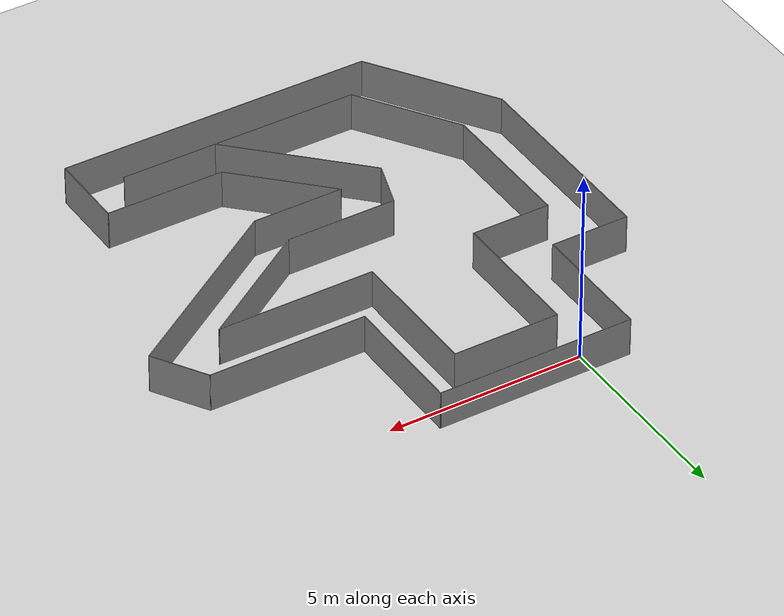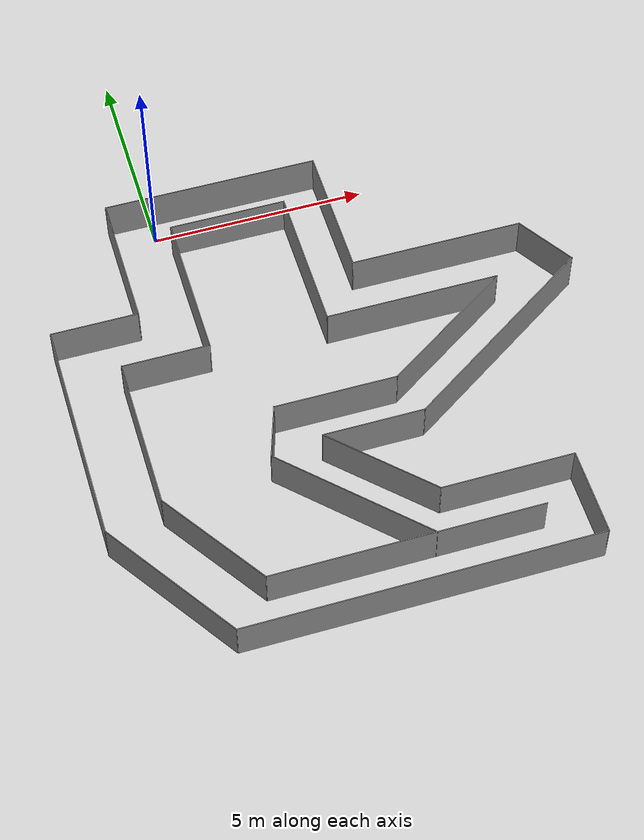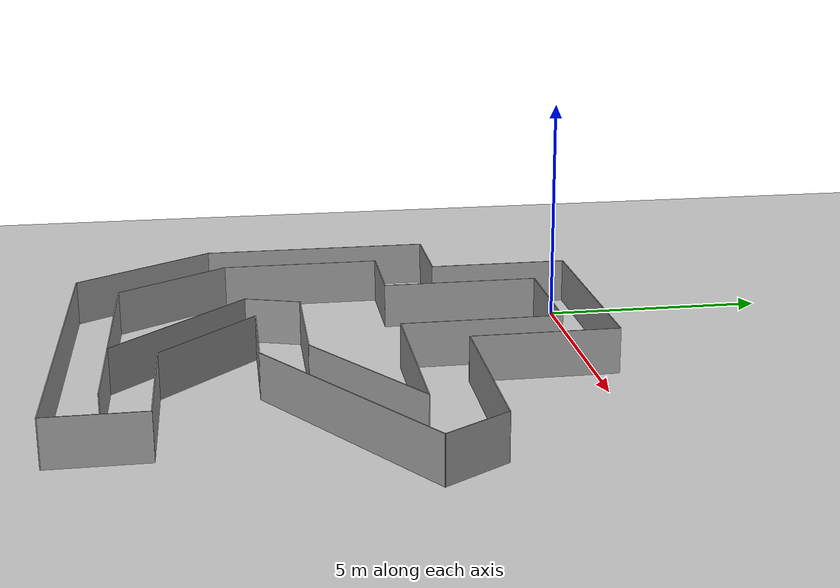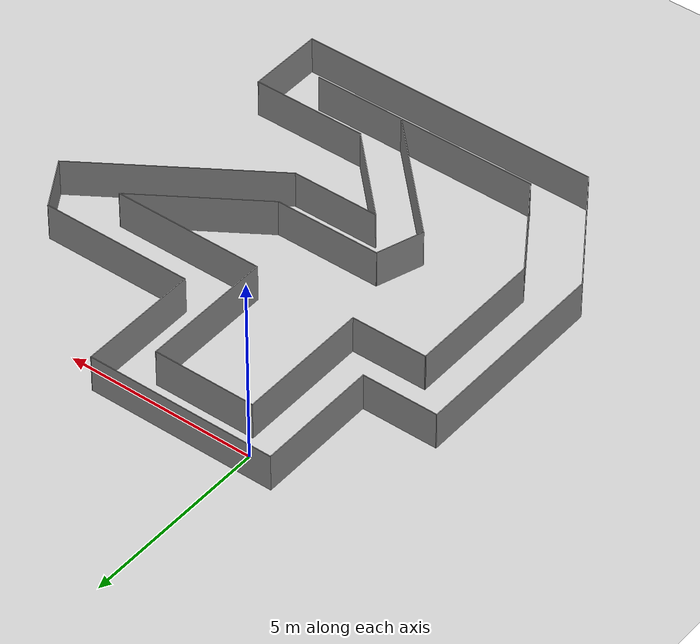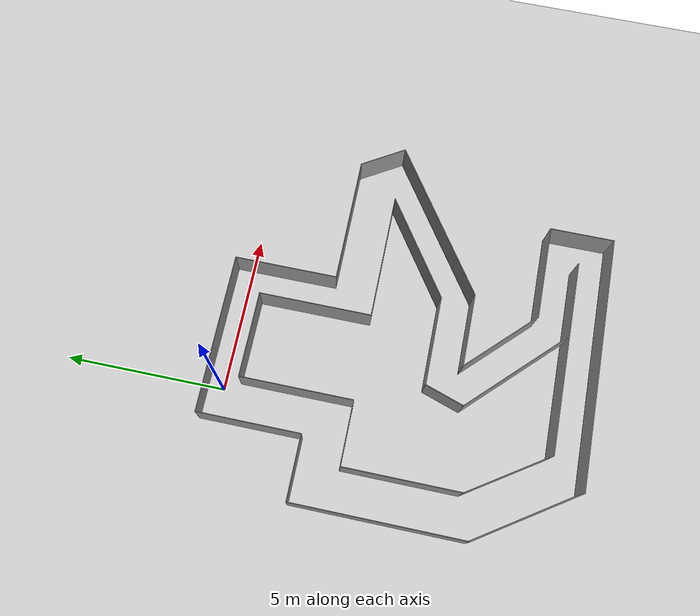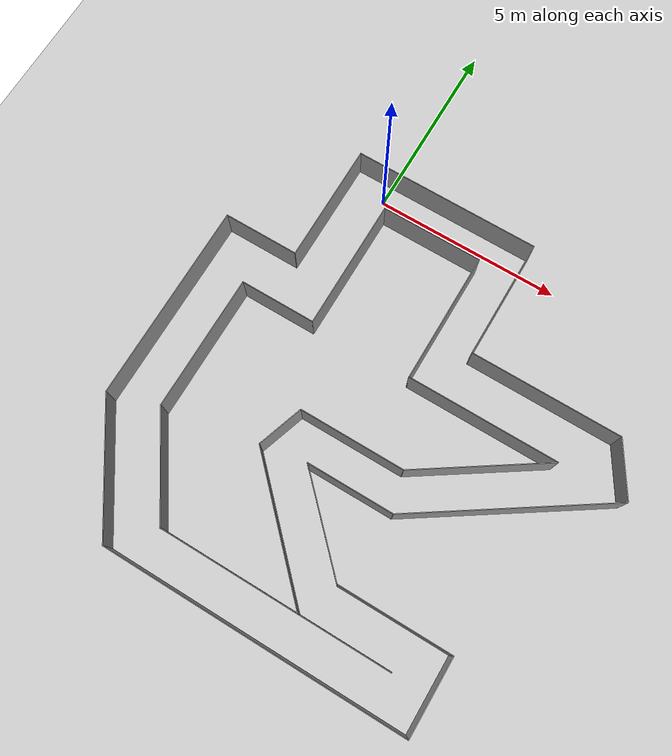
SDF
<sdf version="1.7">
 <world name="default">
  <light name="sun" type="directional">
   <pose>0 0 10 0 -0 0</pose>
   <diffuse>0.8 0.8 0.8 1</diffuse>
   <specular>0.2 0.2 0.2 1</specular>
   <attenuation>
    <range>1000</range>
    <constant>0.9</constant>
    <linear>0.01</linear>
    <quadratic>0.001</quadratic>
   </attenuation>
   <direction>-0.5 0.1 -0.9</direction>
   <spot><inner_angle>0</inner_angle><outer_angle>0</outer_angle><falloff>0</falloff></spot>
  </light>
  <model name="ground_plane">
   <static>1</static>
   <link name="link">
    <collision name="collision">
     <geometry><plane><normal>0 0 1</normal><size>100 100</size></plane></geometry>
     <surface><friction><ode><mu>100</mu><mu2>50</mu2></ode></friction></surface>
    </collision>
    <visual name="visual">
     <cast_shadows>0</cast_shadows>
     <geometry><plane><normal>0 0 1</normal><size>100 100</size></plane></geometry>
     <material>
      <script><uri>file://media/materials/scripts/gazebo.material</uri><name>Gazebo/Grey</name></script>
     </material>
    </visual>
   </link>
  </model>
  <gravity>0 0 -9.8</gravity>
  <magnetic_field>6e-06 2.3e-05 -4.2e-05</magnetic_field>
  <atmosphere type="adiabatic"/>
  <physics type="ode">
   <max_step_size>0.001</max_step_size>
   <real_time_factor>1</real_time_factor>
   <real_time_update_rate>1000</real_time_update_rate>
  </physics>
  <scene><ambient>0.4 0.4 0.4 1</ambient><background>0.7 0.7 0.7 1</background><shadows>1</shadows></scene>
  <audio><device>default</device></audio>
  <spherical_coordinates>
   <surface_model>EARTH_WGS84</surface_model>
   <latitude_deg>0</latitude_deg>
   <longitude_deg>0</longitude_deg>
   <elevation>0</elevation>
   <heading_deg>0</heading_deg>
  </spherical_coordinates>
  <model name="cbf_maze">
   <pose>2.902 -5.25193 0 0 -0 0</pose>
   <link name="Wall_0">
    <collision name="Wall_0_Collision">
     <geometry><box><size>5.02 0.02 1</size></box></geometry>
     <pose>0 0 0.5 0 -0 0</pose>
    </collision>
    <visual name="Wall_0_Visual">
     <pose>0 0 0.5 0 -0 0</pose>
     <geometry><box><size>5.02 0.02 1</size></box></geometry>
     <material>
      <script><uri>file://media/materials/scripts/gazebo.material</uri><name>Gazebo/Grey</name></script>
      <ambient>1 1 1 1</ambient>
     </material>
     <meta><layer>0</layer></meta>
    </visual>
    <pose>-1.402 5.75193 0 0 -0 0</pose>
   </link>
   <link name="Wall_10">
    <collision name="Wall_10_Collision">
     <geometry><box><size>4.02 0.02 1</size></box></geometry>
     <pose>0 0 0.5 0 -0 0</pose>
    </collision>
    <visual name="Wall_10_Visual">
     <pose>0 0 0.5 0 -0 0</pose>
     <geometry><box><size>4.02 0.02 1</size></box></geometry>
     <material>
      <script><uri>file://media/materials/scripts/gazebo.material</uri><name>Gazebo/Grey</name></script>
      <ambient>1 1 1 1</ambient>
     </material>
     <meta><layer>0</layer></meta>
    </visual>
    <pose>2.098 1.25193 0 0 -0 0</pose>
   </link>
   <link name="Wall_12">
    <collision name="Wall_12_Collision">
     <geometry><box><size>5.42916 0.02 1</size></box></geometry>
     <pose>0 0 0.5 0 -0 0</pose>
    </collision>
    <visual name="Wall_12_Visual">
     <pose>0 0 0.5 0 -0 0</pose>
     <geometry><box><size>5.42916 0.02 1</size></box></geometry>
     <material>
      <script><uri>file://media/materials/scripts/gazebo.material</uri><name>Gazebo/Grey</name></script>
      <ambient>1 1 1 1</ambient>
     </material>
     <meta><layer>0</layer></meta>
    </visual>
    <pose>3.6515 -0.248066 0 0 -0 0.5879</pose>
   </link>
   <link name="Wall_14">
    <collision name="Wall_14_Collision">
     <geometry><box><size>1.54853 0.02 1</size></box></geometry>
     <pose>0 0 0.5 0 -0 0</pose>
    </collision>
    <visual name="Wall_14_Visual">
     <pose>0 0 0.5 0 -0 0</pose>
     <geometry><box><size>1.54853 0.02 1</size></box></geometry>
     <material>
      <script><uri>file://media/materials/scripts/gazebo.material</uri><name>Gazebo/Grey</name></script>
      <ambient>1 1 1 1</ambient>
     </material>
     <meta><layer>0</layer></meta>
    </visual>
    <pose>5.5 1.90193 0 0 -0 -1.01691</pose>
   </link>
   <link name="Wall_16">
    <collision name="Wall_16_Collision">
     <geometry><box><size>3.62555 0.02 1</size></box></geometry>
     <pose>0 0 0.5 0 -0 0</pose>
    </collision>
    <visual name="Wall_16_Visual">
     <pose>0 0 0.5 0 -0 0</pose>
     <geometry><box><size>3.62555 0.02 1</size></box></geometry>
     <material>
      <script><uri>file://media/materials/scripts/gazebo.material</uri><name>Gazebo/Grey</name></script>
      <ambient>1 1 1 1</ambient>
     </material>
     <meta><layer>0</layer></meta>
    </visual>
    <pose>2.598 0.251934 0 0 -0 0.588003</pose>
   </link>
   <link name="Wall_18">
    <collision name="Wall_18_Collision">
     <geometry><box><size>2.82 0.02 1</size></box></geometry>
     <pose>0 0 0.5 0 -0 0</pose>
    </collision>
    <visual name="Wall_18_Visual">
     <pose>0 0 0.5 0 -0 0</pose>
     <geometry><box><size>2.82 0.02 1</size></box></geometry>
     <material>
      <script><uri>file://media/materials/scripts/gazebo.material</uri><name>Gazebo/Grey</name></script>
      <ambient>1 1 1 1</ambient>
     </material>
     <meta><layer>0</layer></meta>
    </visual>
    <pose>-0.302 -0.748066 0 0 -0 0</pose>
   </link>
   <link name="Wall_2">
    <collision name="Wall_2_Collision">
     <geometry><box><size>3.22 0.02 1</size></box></geometry>
     <pose>0 0 0.5 0 -0 0</pose>
    </collision>
    <visual name="Wall_2_Visual">
     <pose>0 0 0.5 0 -0 0</pose>
     <geometry><box><size>3.22 0.02 1</size></box></geometry>
     <material>
      <script><uri>file://media/materials/scripts/gazebo.material</uri><name>Gazebo/Grey</name></script>
      <ambient>1 1 1 1</ambient>
     </material>
     <meta><layer>0</layer></meta>
    </visual>
    <pose>1.098 4.15193 0 0 -0 -1.5708</pose>
   </link>
   <link name="Wall_20">
    <collision name="Wall_20_Collision">
     <geometry><box><size>3.96991 0.02 1</size></box></geometry>
     <pose>0 0 0.5 0 -0 0</pose>
    </collision>
    <visual name="Wall_20_Visual">
     <pose>0 0 0.5 0 -0 0</pose>
     <geometry><box><size>3.96991 0.02 1</size></box></geometry>
     <material>
      <script><uri>file://media/materials/scripts/gazebo.material</uri><name>Gazebo/Grey</name></script>
      <ambient>1 1 1 1</ambient>
     </material>
     <meta><layer>0</layer></meta>
    </visual>
    <pose>-0.709 -3.34807 0 0 -0 -0.787904</pose>
   </link>
   <link name="Wall_22">
    <collision name="Wall_22_Collision">
     <geometry><box><size>1.28491 0.02 1</size></box></geometry>
     <pose>0 0 0.5 0 -0 0</pose>
    </collision>
    <visual name="Wall_22_Visual">
     <pose>0 0 0.5 0 -0 0</pose>
     <geometry><box><size>1.28491 0.02 1</size></box></geometry>
     <material>
      <script><uri>file://media/materials/scripts/gazebo.material</uri><name>Gazebo/Grey</name></script>
      <ambient>1 1 1 1</ambient>
     </material>
     <meta><layer>0</layer></meta>
    </visual>
    <pose>-1.902 -1.34807 0 0 -0 -1.89255</pose>
   </link>
   <link name="Wall_24">
    <collision name="Wall_24_Collision">
     <geometry><box><size>8.02 0.02 1</size></box></geometry>
     <pose>0 0 0.5 0 -0 0</pose>
    </collision>
    <visual name="Wall_24_Visual">
     <pose>0 0 0.5 0 -0 0</pose>
     <geometry><box><size>8.02 0.02 1</size></box></geometry>
     <material>
      <script><uri>file://media/materials/scripts/gazebo.material</uri><name>Gazebo/Grey</name></script>
      <ambient>1 1 1 1</ambient>
     </material>
     <meta><layer>0</layer></meta>
    </visual>
    <pose>0.098 -5.74807 0 0 -0 0</pose>
   </link>
   <link name="Wall_26">
    <collision name="Wall_26_Collision">
     <geometry><box><size>2.323 0.02 1</size></box></geometry>
     <pose>0 0 0.5 0 -0 0</pose>
    </collision>
    <visual name="Wall_26_Visual">
     <pose>0 0 0.5 0 -0 0</pose>
     <geometry><box><size>2.323 0.02 1</size></box></geometry>
     <material>
      <script><uri>file://media/materials/scripts/gazebo.material</uri><name>Gazebo/Grey</name></script>
      <ambient>1 1 1 1</ambient>
     </material>
     <meta><layer>0</layer></meta>
    </visual>
    <pose>0.2495 -1.74807 0 0 -0 0</pose>
   </link>
   <link name="Wall_28">
    <collision name="Wall_28_Collision">
     <geometry><box><size>2.84843 0.02 1</size></box></geometry>
     <pose>0 0 0.5 0 -0 0</pose>
    </collision>
    <visual name="Wall_28_Visual">
     <pose>0 0 0.5 0 -0 0</pose>
     <geometry><box><size>2.84843 0.02 1</size></box></geometry>
     <material>
      <script><uri>file://media/materials/scripts/gazebo.material</uri><name>Gazebo/Grey</name></script>
      <ambient>1 1 1 1</ambient>
     </material>
     <meta><layer>0</layer></meta>
    </visual>
    <pose>0.098 -2.74807 0 0 -0 -0.785398</pose>
   </link>
   <link name="Wall_30">
    <collision name="Wall_30_Collision">
     <geometry><box><size>3.02 0.02 1</size></box></geometry>
     <pose>0 0 0.5 0 -0 0</pose>
    </collision>
    <visual name="Wall_30_Visual">
     <pose>0 0 0.5 0 -0 0</pose>
     <geometry><box><size>3.02 0.02 1</size></box></geometry>
     <material>
      <script><uri>file://media/materials/scripts/gazebo.material</uri><name>Gazebo/Grey</name></script>
      <ambient>1 1 1 1</ambient>
     </material>
     <meta><layer>0</layer></meta>
    </visual>
    <pose>2.598 -3.74807 0 0 -0 0</pose>
   </link>
   <link name="Wall_32">
    <collision name="Wall_32_Collision">
     <geometry><box><size>2.02 0.02 1</size></box></geometry>
     <pose>0 0 0.5 0 -0 0</pose>
    </collision>
    <visual name="Wall_32_Visual">
     <pose>0 0 0.5 0 -0 0</pose>
     <geometry><box><size>2.02 0.02 1</size></box></geometry>
     <material>
      <script><uri>file://media/materials/scripts/gazebo.material</uri><name>Gazebo/Grey</name></script>
      <ambient>1 1 1 1</ambient>
     </material>
     <meta><layer>0</layer></meta>
    </visual>
    <pose>4.098 -4.74807 0 0 -0 -1.5708</pose>
   </link>
   <link name="Wall_34">
    <collision name="Wall_34_Collision">
     <geometry><box><size>6.124 0.02 1</size></box></geometry>
     <pose>0 0 0.5 0 -0 0</pose>
    </collision>
    <visual name="Wall_34_Visual">
     <pose>0 0 0.5 0 -0 0</pose>
     <geometry><box><size>6.124 0.02 1</size></box></geometry>
     <material>
      <script><uri>file://media/materials/scripts/gazebo.material</uri><name>Gazebo/Grey</name></script>
      <ambient>1 1 1 1</ambient>
     </material>
     <meta><layer>0</layer></meta>
    </visual>
    <pose>0.046 -4.74807 0 0 -0 0</pose>
   </link>
   <link name="Wall_36">
    <collision name="Wall_36_Collision">
     <geometry><box><size>3.62555 0.02 1</size></box></geometry>
     <pose>0 0 0.5 0 -0 0</pose>
    </collision>
    <visual name="Wall_36_Visual">
     <pose>0 0 0.5 0 -0 0</pose>
     <geometry><box><size>3.62555 0.02 1</size></box></geometry>
     <material>
      <script><uri>file://media/materials/scripts/gazebo.material</uri><name>Gazebo/Grey</name></script>
      <ambient>1 1 1 1</ambient>
     </material>
     <meta><layer>0</layer></meta>
    </visual>
    <pose>-4.902 -4.24807 0 0 -0 -0.982794</pose>
   </link>
   <link name="Wall_38">
    <collision name="Wall_38_Collision">
     <geometry><box><size>2.89723 0.02 1</size></box></geometry>
     <pose>0 0 0.5 0 -0 0</pose>
    </collision>
    <visual name="Wall_38_Visual">
     <pose>0 0 0.5 0 -0 0</pose>
     <geometry><box><size>2.89723 0.02 1</size></box></geometry>
     <material>
      <script><uri>file://media/materials/scripts/gazebo.material</uri><name>Gazebo/Grey</name></script>
      <ambient>1 1 1 1</ambient>
     </material>
     <meta><layer>0</layer></meta>
    </visual>
    <pose>-3.804 -3.55107 0 0 -0 -0.982794</pose>
   </link>
   <link name="Wall_4">
    <collision name="Wall_4_Collision">
     <geometry><box><size>4.02 0.02 1</size></box></geometry>
     <pose>0 0 0.5 0 -0 0</pose>
    </collision>
    <visual name="Wall_4_Visual">
     <pose>0 0 0.5 0 -0 0</pose>
     <geometry><box><size>4.02 0.02 1</size></box></geometry>
     <material>
      <script><uri>file://media/materials/scripts/gazebo.material</uri><name>Gazebo/Grey</name></script>
      <ambient>1 1 1 1</ambient>
     </material>
     <meta><layer>0</layer></meta>
    </visual>
    <pose>3.098 2.55193 0 0 -0 0</pose>
   </link>
   <link name="Wall_40">
    <collision name="Wall_40_Collision">
     <geometry><box><size>5.32 0.02 1</size></box></geometry>
     <pose>0 0 0.5 0 -0 0</pose>
    </collision>
    <visual name="Wall_40_Visual">
     <pose>0 0 0.5 0 -0 0</pose>
     <geometry><box><size>5.32 0.02 1</size></box></geometry>
     <material>
      <script><uri>file://media/materials/scripts/gazebo.material</uri><name>Gazebo/Grey</name></script>
      <ambient>1 1 1 1</ambient>
     </material>
     <meta><layer>0</layer></meta>
    </visual>
    <pose>-5.902 -0.098066 0 0 -0 1.5708</pose>
   </link>
   <link name="Wall_42">
    <collision name="Wall_42_Collision">
     <geometry><box><size>3.626 0.02 1</size></box></geometry>
     <pose>0 0 0.5 0 -0 0</pose>
    </collision>
    <visual name="Wall_42_Visual">
     <pose>0 0 0.5 0 -0 0</pose>
     <geometry><box><size>3.626 0.02 1</size></box></geometry>
     <material>
      <script><uri>file://media/materials/scripts/gazebo.material</uri><name>Gazebo/Grey</name></script>
      <ambient>1 1 1 1</ambient>
     </material>
     <meta><layer>0</layer></meta>
    </visual>
    <pose>-4.602 -0.551066 0 0 -0 -1.5708</pose>
   </link>
   <link name="Wall_45">
    <collision name="Wall_45_Collision">
     <geometry><box><size>2.02 0.02 1</size></box></geometry>
     <pose>0 0 0.5 0 -0 0</pose>
    </collision>
    <visual name="Wall_45_Visual">
     <pose>0 0 0.5 0 -0 0</pose>
     <geometry><box><size>2.02 0.02 1</size></box></geometry>
     <material>
      <script><uri>file://media/materials/scripts/gazebo.material</uri><name>Gazebo/Grey</name></script>
      <ambient>1 1 1 1</ambient>
     </material>
     <meta><layer>0</layer></meta>
    </visual>
    <pose>-4.902 2.55193 0 0 -0 0</pose>
   </link>
   <link name="Wall_47">
    <collision name="Wall_47_Collision">
     <geometry><box><size>2.02 0.02 1</size></box></geometry>
     <pose>0 0 0.5 0 -0 0</pose>
    </collision>
    <visual name="Wall_47_Visual">
     <pose>0 0 0.5 0 -0 0</pose>
     <geometry><box><size>2.02 0.02 1</size></box></geometry>
     <material>
      <script><uri>file://media/materials/scripts/gazebo.material</uri><name>Gazebo/Grey</name></script>
      <ambient>1 1 1 1</ambient>
     </material>
     <meta><layer>0</layer></meta>
    </visual>
    <pose>-3.602 1.25193 0 0 -0 0</pose>
   </link>
   <link name="Wall_49">
    <collision name="Wall_49_Collision">
     <geometry><box><size>3.52 0.02 1</size></box></geometry>
     <pose>0 0 0.5 0 -0 0</pose>
    </collision>
    <visual name="Wall_49_Visual">
     <pose>0 0 0.5 0 -0 0</pose>
     <geometry><box><size>3.52 0.02 1</size></box></geometry>
     <material>
      <script><uri>file://media/materials/scripts/gazebo.material</uri><name>Gazebo/Grey</name></script>
      <ambient>1 1 1 1</ambient>
     </material>
     <meta><layer>0</layer></meta>
    </visual>
    <pose>-2.602 3.00193 0 0 -0 1.5708</pose>
   </link>
   <link name="Wall_51">
    <collision name="Wall_51_Collision">
     <geometry><box><size>3.22 0.02 1</size></box></geometry>
     <pose>0 0 0.5 0 -0 0</pose>
    </collision>
    <visual name="Wall_51_Visual">
     <pose>0 0 0.5 0 -0 0</pose>
     <geometry><box><size>3.22 0.02 1</size></box></geometry>
     <material>
      <script><uri>file://media/materials/scripts/gazebo.material</uri><name>Gazebo/Grey</name></script>
      <ambient>1 1 1 1</ambient>
     </material>
     <meta><layer>0</layer></meta>
    </visual>
    <pose>-3.902 4.15193 0 0 -0 1.5708</pose>
   </link>
   <link name="Wall_6">
    <collision name="Wall_6_Collision">
     <geometry><box><size>2.72 0.02 1</size></box></geometry>
     <pose>0 0 0.5 0 -0 0</pose>
    </collision>
    <visual name="Wall_6_Visual">
     <pose>0 0 0.5 0 -0 0</pose>
     <geometry><box><size>2.72 0.02 1</size></box></geometry>
     <material>
      <script><uri>file://media/materials/scripts/gazebo.material</uri><name>Gazebo/Grey</name></script>
      <ambient>1 1 1 1</ambient>
     </material>
     <meta><layer>0</layer></meta>
    </visual>
    <pose>-1.252 4.75193 0 0 -0 0</pose>
   </link>
   <link name="Wall_8">
    <collision name="Wall_8_Collision">
     <geometry><box><size>3.52 0.02 1</size></box></geometry>
     <pose>0 0 0.5 0 -0 0</pose>
    </collision>
    <visual name="Wall_8_Visual">
     <pose>0 0 0.5 0 -0 0</pose>
     <geometry><box><size>3.52 0.02 1</size></box></geometry>
     <material>
      <script><uri>file://media/materials/scripts/gazebo.material</uri><name>Gazebo/Grey</name></script>
      <ambient>1 1 1 1</ambient>
     </material>
     <meta><layer>0</layer></meta>
    </visual>
    <pose>0.098 3.00193 0 0 -0 -1.5708</pose>
   </link>
   <static>1</static>
  </model>
 </world>
</sdf>
